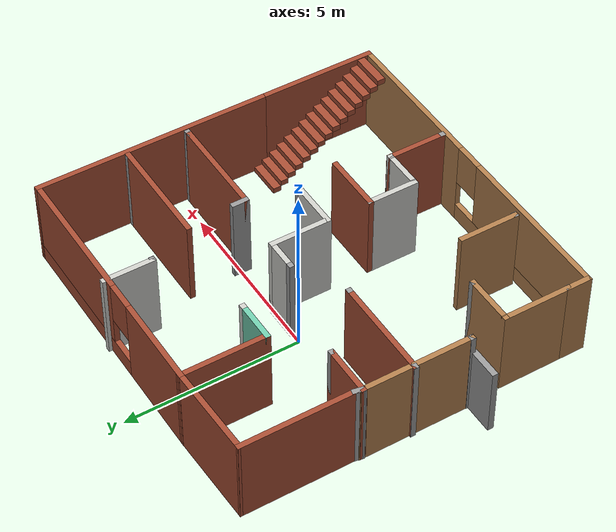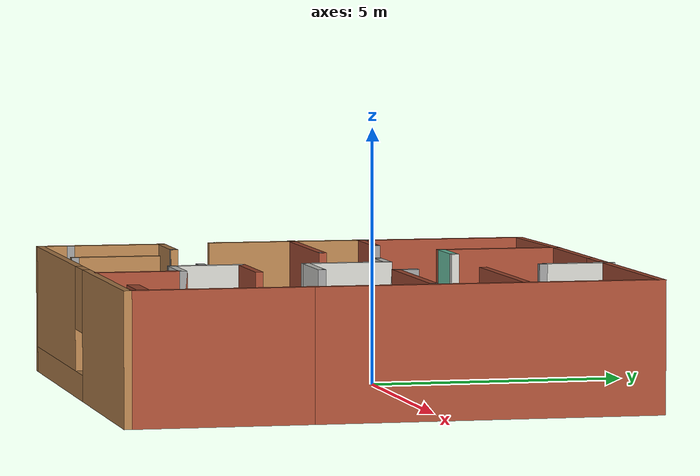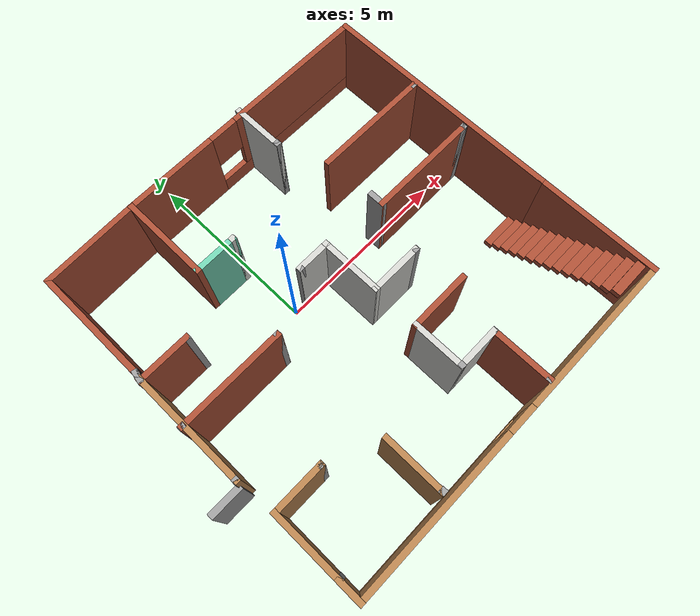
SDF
<?xml version='1.0'?>
<sdf version='1.7'>
  <model name='VENOM_WORLD'>
    <pose>1.03689 -0.885775 0 0 -0 0</pose>
    <link name='Door_0'>
      <collision name='Door_0_Collision'>
        <geometry>
          <box>
            <size>0.9 0.17 2</size>
          </box>
        </geometry>
        <pose>0 0 1 0 -0 0</pose>
      </collision>
      <visual name='Door_0_Visual'>
        <pose>0 0 1 0 -0 0</pose>
        <geometry>
          <box>
            <size>0.9 0.17 2</size>
          </box>
        </geometry>
        <material>
          <script>
            <uri>file://media/materials/scripts/gazebo.material</uri>
            <name>Gazebo/Grey</name>
          </script>
        </material>
      </visual>
      <pose>-5.42568 -1.59288 0 0 -0 0</pose>
    </link>
    <link name='Stairs_0'>
      <visual name='Stairs_0_Visual_0'>
        <pose>4.40502 -1.4564 0.083333 0 -0 0</pose>
        <geometry>
          <box>
            <size>1 0.233333 0.166667</size>
          </box>
        </geometry>
        <material>
          <script>
            <uri>file://media/materials/scripts/gazebo.material</uri>
            <name>Gazebo/Bricks</name>
          </script>
          <ambient>1 1 1 1</ambient>
        </material>
        <meta>
          <layer>0</layer>
        </meta>
      </visual>
      <collision name='Stairs_0_Collision_0'>
        <geometry>
          <box>
            <size>1 0.233333 0.166667</size>
          </box>
        </geometry>
        <pose>4.40502 -1.4564 0.083333 0 -0 0</pose>
      </collision>
      <visual name='Stairs_0_Visual_1'>
        <pose>4.40502 -1.68974 0.25 0 -0 0</pose>
        <geometry>
          <box>
            <size>1 0.233333 0.166667</size>
          </box>
        </geometry>
        <material>
          <script>
            <uri>file://media/materials/scripts/gazebo.material</uri>
            <name>Gazebo/Bricks</name>
          </script>
          <ambient>1 1 1 1</ambient>
        </material>
        <meta>
          <layer>0</layer>
        </meta>
      </visual>
      <collision name='Stairs_0_Collision_1'>
        <geometry>
          <box>
            <size>1 0.233333 0.166667</size>
          </box>
        </geometry>
        <pose>4.40502 -1.68974 0.25 0 -0 0</pose>
      </collision>
      <visual name='Stairs_0_Visual_2'>
        <pose>4.40502 -1.92307 0.416667 0 -0 0</pose>
        <geometry>
          <box>
            <size>1 0.233333 0.166667</size>
          </box>
        </geometry>
        <material>
          <script>
            <uri>file://media/materials/scripts/gazebo.material</uri>
            <name>Gazebo/Bricks</name>
          </script>
          <ambient>1 1 1 1</ambient>
        </material>
        <meta>
          <layer>0</layer>
        </meta>
      </visual>
      <collision name='Stairs_0_Collision_2'>
        <geometry>
          <box>
            <size>1 0.233333 0.166667</size>
          </box>
        </geometry>
        <pose>4.40502 -1.92307 0.416667 0 -0 0</pose>
      </collision>
      <visual name='Stairs_0_Visual_3'>
        <pose>4.40502 -2.1564 0.583333 0 -0 0</pose>
        <geometry>
          <box>
            <size>1 0.233333 0.166667</size>
          </box>
        </geometry>
        <material>
          <script>
            <uri>file://media/materials/scripts/gazebo.material</uri>
            <name>Gazebo/Bricks</name>
          </script>
          <ambient>1 1 1 1</ambient>
        </material>
        <meta>
          <layer>0</layer>
        </meta>
      </visual>
      <collision name='Stairs_0_Collision_3'>
        <geometry>
          <box>
            <size>1 0.233333 0.166667</size>
          </box>
        </geometry>
        <pose>4.40502 -2.1564 0.583333 0 -0 0</pose>
      </collision>
      <visual name='Stairs_0_Visual_4'>
        <pose>4.40502 -2.38974 0.75 0 -0 0</pose>
        <geometry>
          <box>
            <size>1 0.233333 0.166667</size>
          </box>
        </geometry>
        <material>
          <script>
            <uri>file://media/materials/scripts/gazebo.material</uri>
            <name>Gazebo/Bricks</name>
          </script>
          <ambient>1 1 1 1</ambient>
        </material>
        <meta>
          <layer>0</layer>
        </meta>
      </visual>
      <collision name='Stairs_0_Collision_4'>
        <geometry>
          <box>
            <size>1 0.233333 0.166667</size>
          </box>
        </geometry>
        <pose>4.40502 -2.38974 0.75 0 -0 0</pose>
      </collision>
      <visual name='Stairs_0_Visual_5'>
        <pose>4.40502 -2.62307 0.916667 0 -0 0</pose>
        <geometry>
          <box>
            <size>1 0.233333 0.166667</size>
          </box>
        </geometry>
        <material>
          <script>
            <uri>file://media/materials/scripts/gazebo.material</uri>
            <name>Gazebo/Bricks</name>
          </script>
          <ambient>1 1 1 1</ambient>
        </material>
        <meta>
          <layer>0</layer>
        </meta>
      </visual>
      <collision name='Stairs_0_Collision_5'>
        <geometry>
          <box>
            <size>1 0.233333 0.166667</size>
          </box>
        </geometry>
        <pose>4.40502 -2.62307 0.916667 0 -0 0</pose>
      </collision>
      <visual name='Stairs_0_Visual_6'>
        <pose>4.40502 -2.8564 1.08333 0 -0 0</pose>
        <geometry>
          <box>
            <size>1 0.233333 0.166667</size>
          </box>
        </geometry>
        <material>
          <script>
            <uri>file://media/materials/scripts/gazebo.material</uri>
            <name>Gazebo/Bricks</name>
          </script>
          <ambient>1 1 1 1</ambient>
        </material>
        <meta>
          <layer>0</layer>
        </meta>
      </visual>
      <collision name='Stairs_0_Collision_6'>
        <geometry>
          <box>
            <size>1 0.233333 0.166667</size>
          </box>
        </geometry>
        <pose>4.40502 -2.8564 1.08333 0 -0 0</pose>
      </collision>
      <visual name='Stairs_0_Visual_7'>
        <pose>4.40502 -3.08974 1.25 0 -0 0</pose>
        <geometry>
          <box>
            <size>1 0.233333 0.166667</size>
          </box>
        </geometry>
        <material>
          <script>
            <uri>file://media/materials/scripts/gazebo.material</uri>
            <name>Gazebo/Bricks</name>
          </script>
          <ambient>1 1 1 1</ambient>
        </material>
        <meta>
          <layer>0</layer>
        </meta>
      </visual>
      <collision name='Stairs_0_Collision_7'>
        <geometry>
          <box>
            <size>1 0.233333 0.166667</size>
          </box>
        </geometry>
        <pose>4.40502 -3.08974 1.25 0 -0 0</pose>
      </collision>
      <visual name='Stairs_0_Visual_8'>
        <pose>4.40502 -3.32307 1.41667 0 -0 0</pose>
        <geometry>
          <box>
            <size>1 0.233333 0.166667</size>
          </box>
        </geometry>
        <material>
          <script>
            <uri>file://media/materials/scripts/gazebo.material</uri>
            <name>Gazebo/Bricks</name>
          </script>
          <ambient>1 1 1 1</ambient>
        </material>
        <meta>
          <layer>0</layer>
        </meta>
      </visual>
      <collision name='Stairs_0_Collision_8'>
        <geometry>
          <box>
            <size>1 0.233333 0.166667</size>
          </box>
        </geometry>
        <pose>4.40502 -3.32307 1.41667 0 -0 0</pose>
      </collision>
      <visual name='Stairs_0_Visual_9'>
        <pose>4.40502 -3.5564 1.58333 0 -0 0</pose>
        <geometry>
          <box>
            <size>1 0.233333 0.166667</size>
          </box>
        </geometry>
        <material>
          <script>
            <uri>file://media/materials/scripts/gazebo.material</uri>
            <name>Gazebo/Bricks</name>
          </script>
          <ambient>1 1 1 1</ambient>
        </material>
        <meta>
          <layer>0</layer>
        </meta>
      </visual>
      <collision name='Stairs_0_Collision_9'>
        <geometry>
          <box>
            <size>1 0.233333 0.166667</size>
          </box>
        </geometry>
        <pose>4.40502 -3.5564 1.58333 0 -0 0</pose>
      </collision>
      <visual name='Stairs_0_Visual_10'>
        <pose>4.40502 -3.78974 1.75 0 -0 0</pose>
        <geometry>
          <box>
            <size>1 0.233333 0.166667</size>
          </box>
        </geometry>
        <material>
          <script>
            <uri>file://media/materials/scripts/gazebo.material</uri>
            <name>Gazebo/Bricks</name>
          </script>
          <ambient>1 1 1 1</ambient>
        </material>
        <meta>
          <layer>0</layer>
        </meta>
      </visual>
      <collision name='Stairs_0_Collision_10'>
        <geometry>
          <box>
            <size>1 0.233333 0.166667</size>
          </box>
        </geometry>
        <pose>4.40502 -3.78974 1.75 0 -0 0</pose>
      </collision>
      <visual name='Stairs_0_Visual_11'>
        <pose>4.40502 -4.02307 1.91667 0 -0 0</pose>
        <geometry>
          <box>
            <size>1 0.233333 0.166667</size>
          </box>
        </geometry>
        <material>
          <script>
            <uri>file://media/materials/scripts/gazebo.material</uri>
            <name>Gazebo/Bricks</name>
          </script>
          <ambient>1 1 1 1</ambient>
        </material>
        <meta>
          <layer>0</layer>
        </meta>
      </visual>
      <collision name='Stairs_0_Collision_11'>
        <geometry>
          <box>
            <size>1 0.233333 0.166667</size>
          </box>
        </geometry>
        <pose>4.40502 -4.02307 1.91667 0 -0 0</pose>
      </collision>
      <visual name='Stairs_0_Visual_12'>
        <pose>4.40502 -4.2564 2.08333 0 -0 0</pose>
        <geometry>
          <box>
            <size>1 0.233333 0.166667</size>
          </box>
        </geometry>
        <material>
          <script>
            <uri>file://media/materials/scripts/gazebo.material</uri>
            <name>Gazebo/Bricks</name>
          </script>
          <ambient>1 1 1 1</ambient>
        </material>
        <meta>
          <layer>0</layer>
        </meta>
      </visual>
      <collision name='Stairs_0_Collision_12'>
        <geometry>
          <box>
            <size>1 0.233333 0.166667</size>
          </box>
        </geometry>
        <pose>4.40502 -4.2564 2.08333 0 -0 0</pose>
      </collision>
      <visual name='Stairs_0_Visual_13'>
        <pose>4.40502 -4.48974 2.25 0 -0 0</pose>
        <geometry>
          <box>
            <size>1 0.233333 0.166667</size>
          </box>
        </geometry>
        <material>
          <script>
            <uri>file://media/materials/scripts/gazebo.material</uri>
            <name>Gazebo/Bricks</name>
          </script>
          <ambient>1 1 1 1</ambient>
        </material>
        <meta>
          <layer>0</layer>
        </meta>
      </visual>
      <collision name='Stairs_0_Collision_13'>
        <geometry>
          <box>
            <size>1 0.233333 0.166667</size>
          </box>
        </geometry>
        <pose>4.40502 -4.48974 2.25 0 -0 0</pose>
      </collision>
      <visual name='Stairs_0_Visual_14'>
        <pose>4.40502 -4.72307 2.41667 0 -0 0</pose>
        <geometry>
          <box>
            <size>1 0.233333 0.166667</size>
          </box>
        </geometry>
        <material>
          <script>
            <uri>file://media/materials/scripts/gazebo.material</uri>
            <name>Gazebo/Bricks</name>
          </script>
          <ambient>1 1 1 1</ambient>
        </material>
        <meta>
          <layer>0</layer>
        </meta>
      </visual>
      <collision name='Stairs_0_Collision_14'>
        <geometry>
          <box>
            <size>1 0.233333 0.166667</size>
          </box>
        </geometry>
        <pose>4.40502 -4.72307 2.41667 0 -0 0</pose>
      </collision>
    </link>
    <link name='Wall_0'>
      <collision name='Wall_0_Collision'>
        <geometry>
          <box>
            <size>0.16 0.15 2.5</size>
          </box>
        </geometry>
        <pose>0 0 1.25 0 -0 0</pose>
      </collision>
      <visual name='Wall_0_Visual'>
        <pose>0 0 1.25 0 -0 0</pose>
        <geometry>
          <box>
            <size>0.16 0.15 2.5</size>
          </box>
        </geometry>
        <material>
          <script>
            <uri>file://media/materials/scripts/gazebo.material</uri>
            <name>Gazebo/Grey</name>
          </script>
          <ambient>1 1 1 1</ambient>
        </material>
        <meta>
          <layer>0</layer>
        </meta>
      </visual>
      <pose>-4.95189 -1.52422 0 0 -0 0</pose>
    </link>
    <link name='Wall_1'>
      <collision name='Wall_1_Collision'>
        <geometry>
          <box>
            <size>3.25 0.15 2.5</size>
          </box>
        </geometry>
        <pose>0 0 1.25 0 -0 0</pose>
      </collision>
      <visual name='Wall_1_Visual'>
        <pose>0 0 1.25 0 -0 0</pose>
        <geometry>
          <box>
            <size>3.25 0.15 2.5</size>
          </box>
        </geometry>
        <material>
          <script>
            <uri>file://media/materials/scripts/gazebo.material</uri>
            <name>Gazebo/Wood</name>
          </script>
          <ambient>1 1 1 1</ambient>
        </material>
        <meta>
          <layer>0</layer>
        </meta>
      </visual>
      <pose>-4.94689 0.025775 0 0 -0 1.5708</pose>
    </link>
    <link name='Wall_11'>
      <collision name='Wall_11_Collision'>
        <geometry>
          <box>
            <size>0.16 0.15 2.5</size>
          </box>
        </geometry>
        <pose>0 0 1.25 0 -0 0</pose>
      </collision>
      <visual name='Wall_11_Visual'>
        <pose>0 0 1.25 0 -0 0</pose>
        <geometry>
          <box>
            <size>0.16 0.15 2.5</size>
          </box>
        </geometry>
        <material>
          <script>
            <uri>file://media/materials/scripts/gazebo.material</uri>
            <name>Gazebo/Grey</name>
          </script>
          <ambient>1 1 1 1</ambient>
        </material>
        <meta>
          <layer>0</layer>
        </meta>
      </visual>
      <pose>4.87305 2.39461 0 0 -0 0</pose>
    </link>
    <link name='Wall_12'>
      <collision name='Wall_12_Collision'>
        <geometry>
          <box>
            <size>3.25 0.15 2.5</size>
          </box>
        </geometry>
        <pose>0 0 1.25 0 -0 0</pose>
      </collision>
      <visual name='Wall_12_Visual'>
        <pose>0 0 1.25 0 -0 0</pose>
        <geometry>
          <box>
            <size>3.25 0.15 2.5</size>
          </box>
        </geometry>
        <material>
          <script>
            <uri>file://media/materials/scripts/gazebo.material</uri>
            <name>Gazebo/Bricks</name>
          </script>
          <ambient>1 1 1 1</ambient>
        </material>
        <meta>
          <layer>0</layer>
        </meta>
      </visual>
      <pose>3.32805 2.39461 0 0 -0 3.14159</pose>
    </link>
    <link name='Wall_14'>
      <collision name='Wall_14_Collision'>
        <geometry>
          <box>
            <size>1.75 0.15 2.5</size>
          </box>
        </geometry>
        <pose>0 0 1.25 0 -0 0</pose>
      </collision>
      <visual name='Wall_14_Visual'>
        <pose>0 0 1.25 0 -0 0</pose>
        <geometry>
          <box>
            <size>1.75 0.15 2.5</size>
          </box>
        </geometry>
        <material>
          <script>
            <uri>file://media/materials/scripts/gazebo.material</uri>
            <name>Gazebo/Bricks</name>
          </script>
          <ambient>1 1 1 1</ambient>
        </material>
        <meta>
          <layer>0</layer>
        </meta>
      </visual>
      <pose>0.97805 -1.95539 0 0 -0 3.14159</pose>
    </link>
    <link name='Wall_15'>
      <collision name='Wall_15_Collision'>
        <geometry>
          <box>
            <size>1.5 0.15 2.5</size>
          </box>
        </geometry>
        <pose>0 0 1.25 0 -0 0</pose>
      </collision>
      <visual name='Wall_15_Visual'>
        <pose>0 0 1.25 0 -0 0</pose>
        <geometry>
          <box>
            <size>1.5 0.15 2.5</size>
          </box>
        </geometry>
        <material>
          <script>
            <uri>file://media/materials/scripts/gazebo.material</uri>
            <name>Gazebo/CeilingTiled</name>
          </script>
          <ambient>0.435294 0.796078 0.67451 1</ambient>
        </material>
        <meta>
          <layer>0</layer>
        </meta>
      </visual>
      <pose>0.17805 -2.63039 0 0 -0 -1.5708</pose>
    </link>
    <link name='Wall_16'>
      <collision name='Wall_16_Collision'>
        <geometry>
          <box>
            <size>0.16 0.15 2.5</size>
          </box>
        </geometry>
        <pose>0 0 1.25 0 -0 0</pose>
      </collision>
      <visual name='Wall_16_Visual'>
        <pose>0 0 1.25 0 -0 0</pose>
        <geometry>
          <box>
            <size>0.16 0.15 2.5</size>
          </box>
        </geometry>
        <material>
          <script>
            <uri>file://media/materials/scripts/gazebo.material</uri>
            <name>Gazebo/Grey</name>
          </script>
          <ambient>1 1 1 1</ambient>
        </material>
        <meta>
          <layer>0</layer>
        </meta>
      </visual>
      <pose>0.18305 -3.30539 0 0 -0 0</pose>
    </link>
    <link name='Wall_4'>
      <pose>1.32811 4.92577 0 0 -0 0</pose>
      <visual name='Wall_4_Visual_0'>
        <pose>-2.43796 0 1.25 0 -0 0</pose>
        <geometry>
          <box>
            <size>2.62409 0.15 2.5</size>
          </box>
        </geometry>
        <material>
          <script>
            <uri>file://media/materials/scripts/gazebo.material</uri>
            <name>Gazebo/Bricks</name>
          </script>
          <ambient>1 1 1 1</ambient>
        </material>
        <meta>
          <layer>0</layer>
        </meta>
      </visual>
      <collision name='Wall_4_Collision_0'>
        <geometry>
          <box>
            <size>2.62409 0.15 2.5</size>
          </box>
        </geometry>
        <pose>-2.43796 0 1.25 0 -0 0</pose>
      </collision>
      <visual name='Wall_4_Visual_1'>
        <pose>1.31204 0 0.25 0 -0 0</pose>
        <geometry>
          <box>
            <size>4.87591 0.15 0.5</size>
          </box>
        </geometry>
        <material>
          <script>
            <uri>file://media/materials/scripts/gazebo.material</uri>
            <name>Gazebo/Bricks</name>
          </script>
          <ambient>1 1 1 1</ambient>
        </material>
        <meta>
          <layer>0</layer>
        </meta>
      </visual>
      <collision name='Wall_4_Collision_1'>
        <geometry>
          <box>
            <size>4.87591 0.15 0.5</size>
          </box>
        </geometry>
        <pose>1.31204 0 0.25 0 -0 0</pose>
      </collision>
      <visual name='Wall_4_Visual_2'>
        <pose>1.71204 0 1.5 0 -0 0</pose>
        <geometry>
          <box>
            <size>4.07591 0.15 2</size>
          </box>
        </geometry>
        <material>
          <script>
            <uri>file://media/materials/scripts/gazebo.material</uri>
            <name>Gazebo/Bricks</name>
          </script>
          <ambient>1 1 1 1</ambient>
        </material>
        <meta>
          <layer>0</layer>
        </meta>
      </visual>
      <collision name='Wall_4_Collision_2'>
        <geometry>
          <box>
            <size>4.07591 0.15 2</size>
          </box>
        </geometry>
        <pose>1.71204 0 1.5 0 -0 0</pose>
      </collision>
      <visual name='Wall_4_Visual_3'>
        <pose>-0.725911 0 1.9 0 -0 0</pose>
        <geometry>
          <box>
            <size>0.8 0.15 1.2</size>
          </box>
        </geometry>
        <material>
          <script>
            <uri>file://media/materials/scripts/gazebo.material</uri>
            <name>Gazebo/Bricks</name>
          </script>
          <ambient>1 1 1 1</ambient>
        </material>
        <meta>
          <layer>0</layer>
        </meta>
      </visual>
      <collision name='Wall_4_Collision_3'>
        <geometry>
          <box>
            <size>0.8 0.15 1.2</size>
          </box>
        </geometry>
        <pose>-0.725911 0 1.9 0 -0 0</pose>
      </collision>
    </link>
    <link name='Wall_47'>
      <collision name='Wall_47_Collision'>
        <geometry>
          <box>
            <size>0.325021 0.15 2.5</size>
          </box>
        </geometry>
        <pose>0 0 1.25 0 -0 0</pose>
      </collision>
      <visual name='Wall_47_Visual'>
        <pose>0 0 1.25 0 -0 0</pose>
        <geometry>
          <box>
            <size>0.325021 0.15 2.5</size>
          </box>
        </geometry>
        <material>
          <script>
            <uri>file://media/materials/scripts/gazebo.material</uri>
            <name>Gazebo/Grey</name>
          </script>
          <ambient>1 1 1 1</ambient>
        </material>
        <meta>
          <layer>0</layer>
        </meta>
      </visual>
      <pose>-4.92955 1.66155 0 0 -0 1.37127</pose>
    </link>
    <link name='Wall_48'>
      <collision name='Wall_48_Collision'>
        <geometry>
          <box>
            <size>3.25 0.15 2.5</size>
          </box>
        </geometry>
        <pose>0 0 1.25 0 -0 0</pose>
      </collision>
      <visual name='Wall_48_Visual'>
        <pose>0 0 1.25 0 -0 0</pose>
        <geometry>
          <box>
            <size>3.25 0.15 2.5</size>
          </box>
        </geometry>
        <material>
          <script>
            <uri>file://media/materials/scripts/gazebo.material</uri>
            <name>Gazebo/Bricks</name>
          </script>
          <ambient>1 1 1 1</ambient>
        </material>
        <meta>
          <layer>0</layer>
        </meta>
      </visual>
      <pose>-4.9122 3.29732 0 0 -0 1.5708</pose>
    </link>
    <link name='Wall_49'>
      <collision name='Wall_49_Collision'>
        <geometry>
          <box>
            <size>2.71651 0.15 2.5</size>
          </box>
        </geometry>
        <pose>0 0 1.25 0 -0 0</pose>
      </collision>
      <visual name='Wall_49_Visual'>
        <pose>0 0 1.25 0 -0 0</pose>
        <geometry>
          <box>
            <size>2.71651 0.15 2.5</size>
          </box>
        </geometry>
        <material>
          <script>
            <uri>file://media/materials/scripts/gazebo.material</uri>
            <name>Gazebo/Bricks</name>
          </script>
          <ambient>1 1 1 1</ambient>
        </material>
        <meta>
          <layer>0</layer>
        </meta>
      </visual>
      <pose>-3.62954 4.88655 0 0 -0 0.030572</pose>
    </link>
    <link name='Wall_5'>
      <collision name='Wall_5_Collision'>
        <geometry>
          <box>
            <size>6.75 0.15 2.5</size>
          </box>
        </geometry>
        <pose>0 0 1.25 0 -0 0</pose>
      </collision>
      <visual name='Wall_5_Visual'>
        <pose>0 0 1.25 0 -0 0</pose>
        <geometry>
          <box>
            <size>6.75 0.15 2.5</size>
          </box>
        </geometry>
        <material>
          <script>
            <uri>file://media/materials/scripts/gazebo.material</uri>
            <name>Gazebo/Bricks</name>
          </script>
          <ambient>1 1 1 1</ambient>
        </material>
        <meta>
          <layer>0</layer>
        </meta>
      </visual>
      <pose>5.00311 1.62577 0 0 -0 -1.5708</pose>
    </link>
    <link name='Wall_50'>
      <collision name='Wall_50_Collision'>
        <geometry>
          <box>
            <size>2.5 0.15 2.5</size>
          </box>
        </geometry>
        <pose>0 0 1.25 0 -0 0</pose>
      </collision>
      <visual name='Wall_50_Visual'>
        <pose>0 0 1.25 0 -0 0</pose>
        <geometry>
          <box>
            <size>2.5 0.15 2.5</size>
          </box>
        </geometry>
        <material>
          <script>
            <uri>file://media/materials/scripts/gazebo.material</uri>
            <name>Gazebo/Bricks</name>
          </script>
          <ambient>1 1 1 1</ambient>
        </material>
        <meta>
          <layer>0</layer>
        </meta>
      </visual>
      <pose>-2.34689 3.75077 0 0 -0 -1.5708</pose>
    </link>
    <link name='Wall_51'>
      <collision name='Wall_51_Collision'>
        <geometry>
          <box>
            <size>1.25 0.15 2.5</size>
          </box>
        </geometry>
        <pose>0 0 1.25 0 -0 0</pose>
      </collision>
      <visual name='Wall_51_Visual'>
        <pose>0 0 1.25 0 -0 0</pose>
        <geometry>
          <box>
            <size>1.25 0.15 2.5</size>
          </box>
        </geometry>
        <material>
          <script>
            <uri>file://media/materials/scripts/gazebo.material</uri>
            <name>Gazebo/Grey</name>
          </script>
          <ambient>0.435294 0.796078 0.67451 1</ambient>
        </material>
        <meta>
          <layer>0</layer>
        </meta>
      </visual>
      <pose>-1.79689 2.57578 0 0 -0 0</pose>
    </link>
    <link name='Wall_52'>
      <collision name='Wall_52_Collision'>
        <geometry>
          <box>
            <size>0.16 0.15 2.5</size>
          </box>
        </geometry>
        <pose>0 0 1.25 0 -0 0</pose>
      </collision>
      <visual name='Wall_52_Visual'>
        <pose>0 0 1.25 0 -0 0</pose>
        <geometry>
          <box>
            <size>0.16 0.15 2.5</size>
          </box>
        </geometry>
        <material>
          <script>
            <uri>file://media/materials/scripts/gazebo.material</uri>
            <name>Gazebo/CeilingTiled</name>
          </script>
          <ambient>1 1 1 1</ambient>
        </material>
        <meta>
          <layer>0</layer>
        </meta>
      </visual>
      <pose>-1.24189 2.57578 0 0 -0 0</pose>
    </link>
    <link name='Wall_54'>
      <collision name='Wall_54_Collision'>
        <geometry>
          <box>
            <size>0.356284 0.15 2.5</size>
          </box>
        </geometry>
        <pose>0 0 1.25 0 -0 0</pose>
      </collision>
      <visual name='Wall_54_Visual'>
        <pose>0 0 1.25 0 -0 0</pose>
        <geometry>
          <box>
            <size>0.356284 0.15 2.5</size>
          </box>
        </geometry>
        <material>
          <script>
            <uri>file://media/materials/scripts/gazebo.material</uri>
            <name>Gazebo/Grey</name>
          </script>
          <ambient>1 1 1 1</ambient>
        </material>
        <meta>
          <layer>0</layer>
        </meta>
      </visual>
      <pose>-4.93243 1.64619 0 0 -0 -1.76819</pose>
    </link>
    <link name='Wall_55'>
      <collision name='Wall_55_Collision'>
        <geometry>
          <box>
            <size>1.5 0.15 2.5</size>
          </box>
        </geometry>
        <pose>0 0 1.25 0 -0 0</pose>
      </collision>
      <visual name='Wall_55_Visual'>
        <pose>0 0 1.25 0 -0 0</pose>
        <geometry>
          <box>
            <size>1.5 0.15 2.5</size>
          </box>
        </geometry>
        <material>
          <script>
            <uri>file://media/materials/scripts/gazebo.material</uri>
            <name>Gazebo/Bricks</name>
          </script>
          <ambient>1 1 1 1</ambient>
        </material>
        <meta>
          <layer>0</layer>
        </meta>
      </visual>
      <pose>-4.27766 1.54505 0 0 -0 0</pose>
    </link>
    <link name='Wall_56'>
      <collision name='Wall_56_Collision'>
        <geometry>
          <box>
            <size>0.15 0.15 2.5</size>
          </box>
        </geometry>
        <pose>0 0 1.25 0 -0 0</pose>
      </collision>
      <visual name='Wall_56_Visual'>
        <pose>0 0 1.25 0 -0 0</pose>
        <geometry>
          <box>
            <size>0.15 0.15 2.5</size>
          </box>
        </geometry>
        <material>
          <script>
            <uri>file://media/materials/scripts/gazebo.material</uri>
            <name>Gazebo/Grey</name>
          </script>
          <ambient>1 1 1 1</ambient>
        </material>
        <meta>
          <layer>0</layer>
        </meta>
      </visual>
      <pose>-3.60265 1.54505 0 0 -0 0</pose>
    </link>
    <link name='Wall_58'>
      <collision name='Wall_58_Collision'>
        <geometry>
          <box>
            <size>0.16 0.15 2.5</size>
          </box>
        </geometry>
        <pose>0 0 1.25 0 -0 0</pose>
      </collision>
      <visual name='Wall_58_Visual'>
        <pose>0 0 1.25 0 -0 0</pose>
        <geometry>
          <box>
            <size>0.16 0.15 2.5</size>
          </box>
        </geometry>
        <material>
          <script>
            <uri>file://media/materials/scripts/gazebo.material</uri>
            <name>Gazebo/Grey</name>
          </script>
          <ambient>1 1 1 1</ambient>
        </material>
        <meta>
          <layer>0</layer>
        </meta>
      </visual>
      <pose>-4.99811 0.1291 0 0 -0 0</pose>
    </link>
    <link name='Wall_59'>
      <collision name='Wall_59_Collision'>
        <geometry>
          <box>
            <size>3 0.15 2.5</size>
          </box>
        </geometry>
        <pose>0 0 1.25 0 -0 0</pose>
      </collision>
      <visual name='Wall_59_Visual'>
        <pose>0 0 1.25 0 -0 0</pose>
        <geometry>
          <box>
            <size>3 0.15 2.5</size>
          </box>
        </geometry>
        <material>
          <script>
            <uri>file://media/materials/scripts/gazebo.material</uri>
            <name>Gazebo/Bricks</name>
          </script>
          <ambient>1 1 1 1</ambient>
        </material>
        <meta>
          <layer>0</layer>
        </meta>
      </visual>
      <pose>-3.56811 0.1291 0 0 -0 0</pose>
    </link>
    <link name='Wall_6'>
      <collision name='Wall_6_Collision'>
        <geometry>
          <box>
            <size>3.5 0.15 2.5</size>
          </box>
        </geometry>
        <pose>0 0 1.25 0 -0 0</pose>
      </collision>
      <visual name='Wall_6_Visual'>
        <pose>0 0 1.25 0 -0 0</pose>
        <geometry>
          <box>
            <size>3.5 0.15 2.5</size>
          </box>
        </geometry>
        <material>
          <script>
            <uri>file://media/materials/scripts/gazebo.material</uri>
            <name>Gazebo/Bricks</name>
          </script>
          <ambient>1 1 1 1</ambient>
        </material>
        <meta>
          <layer>0</layer>
        </meta>
      </visual>
      <pose>5.00311 -3.34923 0 0 -0 -1.5708</pose>
    </link>
    <link name='Wall_60'>
      <collision name='Wall_60_Collision'>
        <geometry>
          <box>
            <size>0.15 0.15 2.5</size>
          </box>
        </geometry>
        <pose>0 0 1.25 0 -0 0</pose>
      </collision>
      <visual name='Wall_60_Visual'>
        <pose>0 0 1.25 0 -0 0</pose>
        <geometry>
          <box>
            <size>0.15 0.15 2.5</size>
          </box>
        </geometry>
        <material>
          <script>
            <uri>file://media/materials/scripts/gazebo.material</uri>
            <name>Gazebo/Grey</name>
          </script>
          <ambient>1 1 1 1</ambient>
        </material>
        <meta>
          <layer>0</layer>
        </meta>
      </visual>
      <pose>-2.14311 0.1291 0 0 -0 0</pose>
    </link>
    <link name='Wall_62'>
      <collision name='Wall_62_Collision'>
        <geometry>
          <box>
            <size>0.5 0.15 2.5</size>
          </box>
        </geometry>
        <pose>0 0 1.25 0 -0 0</pose>
      </collision>
      <visual name='Wall_62_Visual'>
        <pose>0 0 1.25 0 -0 0</pose>
        <geometry>
          <box>
            <size>0.5 0.15 2.5</size>
          </box>
        </geometry>
        <material>
          <script>
            <uri>file://media/materials/scripts/gazebo.material</uri>
            <name>Gazebo/Grey</name>
          </script>
          <ambient>1 1 1 1</ambient>
        </material>
        <meta>
          <layer>0</layer>
        </meta>
      </visual>
      <pose>1.87434 0.844123 0 0 -0 -1.5708</pose>
    </link>
    <link name='Wall_63'>
      <collision name='Wall_63_Collision'>
        <geometry>
          <box>
            <size>3 0.15 2.5</size>
          </box>
        </geometry>
        <pose>0 0 1.25 0 -0 0</pose>
      </collision>
      <visual name='Wall_63_Visual'>
        <pose>0 0 1.25 0 -0 0</pose>
        <geometry>
          <box>
            <size>3 0.15 2.5</size>
          </box>
        </geometry>
        <material>
          <script>
            <uri>file://media/materials/scripts/gazebo.material</uri>
            <name>Gazebo/Bricks</name>
          </script>
          <ambient>1 1 1 1</ambient>
        </material>
        <meta>
          <layer>0</layer>
        </meta>
      </visual>
      <pose>3.29934 0.669123 0 0 -0 0</pose>
    </link>
    <link name='Wall_64'>
      <collision name='Wall_64_Collision'>
        <geometry>
          <box>
            <size>0.25 0.15 2.5</size>
          </box>
        </geometry>
        <pose>0 0 1.25 0 -0 0</pose>
      </collision>
      <visual name='Wall_64_Visual'>
        <pose>0 0 1.25 0 -0 0</pose>
        <geometry>
          <box>
            <size>0.25 0.15 2.5</size>
          </box>
        </geometry>
        <material>
          <script>
            <uri>file://media/materials/scripts/gazebo.material</uri>
            <name>Gazebo/Grey</name>
          </script>
          <ambient>1 1 1 1</ambient>
        </material>
        <meta>
          <layer>0</layer>
        </meta>
      </visual>
      <pose>4.77434 0.669123 0 0 -0 0</pose>
    </link>
    <link name='Wall_65'>
      <collision name='Wall_65_Collision'>
        <geometry>
          <box>
            <size>0.16 0.15 2.5</size>
          </box>
        </geometry>
        <pose>0 0 1.25 0 -0 0</pose>
      </collision>
      <visual name='Wall_65_Visual'>
        <pose>0 0 1.25 0 -0 0</pose>
        <geometry>
          <box>
            <size>0.16 0.15 2.5</size>
          </box>
        </geometry>
        <material>
          <script>
            <uri>file://media/materials/scripts/gazebo.material</uri>
            <name>Gazebo/Grey</name>
          </script>
          <ambient>1 1 1 1</ambient>
        </material>
        <meta>
          <layer>0</layer>
        </meta>
      </visual>
      <pose>4.82934 0.669123 0 0 -0 0</pose>
    </link>
    <link name='Wall_67'>
      <collision name='Wall_67_Collision'>
        <geometry>
          <box>
            <size>1.25 0.15 2.5</size>
          </box>
        </geometry>
        <pose>0 0 1.25 0 -0 0</pose>
      </collision>
      <visual name='Wall_67_Visual'>
        <pose>0 0 1.25 0 -0 0</pose>
        <geometry>
          <box>
            <size>1.25 0.15 2.5</size>
          </box>
        </geometry>
        <material>
          <script>
            <uri>file://media/materials/scripts/gazebo.material</uri>
            <name>Gazebo/CeilingTiled</name>
          </script>
          <ambient>0.435294 0.796078 0.67451 1</ambient>
        </material>
        <meta>
          <layer>0</layer>
        </meta>
      </visual>
      <pose>0.72805 -3.30539 0 0 -0 0</pose>
    </link>
    <link name='Wall_68'>
      <collision name='Wall_68_Collision'>
        <geometry>
          <box>
            <size>0.16 0.15 2.5</size>
          </box>
        </geometry>
        <pose>0 0 1.25 0 -0 0</pose>
      </collision>
      <visual name='Wall_68_Visual'>
        <pose>0 0 1.25 0 -0 0</pose>
        <geometry>
          <box>
            <size>0.16 0.15 2.5</size>
          </box>
        </geometry>
        <material>
          <script>
            <uri>file://media/materials/scripts/gazebo.material</uri>
            <name>Gazebo/Grey</name>
          </script>
          <ambient>1 1 1 1</ambient>
        </material>
        <meta>
          <layer>0</layer>
        </meta>
      </visual>
      <pose>1.28305 -3.30539 0 0 -0 0</pose>
    </link>
    <link name='Wall_69'>
      <collision name='Wall_69_Collision'>
        <geometry>
          <box>
            <size>1.75 0.15 2.5</size>
          </box>
        </geometry>
        <pose>0 0 1.25 0 -0 0</pose>
      </collision>
      <visual name='Wall_69_Visual'>
        <pose>0 0 1.25 0 -0 0</pose>
        <geometry>
          <box>
            <size>1.75 0.15 2.5</size>
          </box>
        </geometry>
        <material>
          <script>
            <uri>file://media/materials/scripts/gazebo.material</uri>
            <name>Gazebo/Bricks</name>
          </script>
          <ambient>1 1 1 1</ambient>
        </material>
        <meta>
          <layer>0</layer>
        </meta>
      </visual>
      <pose>1.28805 -4.10539 0 0 -0 -1.5708</pose>
    </link>
    <link name='Wall_7'>
      <pose>0.07811 -5.02423 0 0 -0 3.14159</pose>
      <visual name='Wall_7_Visual_0'>
        <pose>-2.75977 0 1.25 0 -0 0</pose>
        <geometry>
          <box>
            <size>4.48047 0.15 2.5</size>
          </box>
        </geometry>
        <material>
          <script>
            <uri>file://media/materials/scripts/gazebo.material</uri>
            <name>Gazebo/Wood</name>
          </script>
          <ambient>1 1 1 1</ambient>
        </material>
        <meta>
          <layer>0</layer>
        </meta>
      </visual>
      <collision name='Wall_7_Collision_0'>
        <geometry>
          <box>
            <size>4.48047 0.15 2.5</size>
          </box>
        </geometry>
        <pose>-2.75977 0 1.25 0 -0 0</pose>
      </collision>
      <visual name='Wall_7_Visual_1'>
        <pose>2.24023 0 0.25 0 -0 0</pose>
        <geometry>
          <box>
            <size>5.51953 0.15 0.5</size>
          </box>
        </geometry>
        <material>
          <script>
            <uri>file://media/materials/scripts/gazebo.material</uri>
            <name>Gazebo/Wood</name>
          </script>
          <ambient>1 1 1 1</ambient>
        </material>
        <meta>
          <layer>0</layer>
        </meta>
      </visual>
      <collision name='Wall_7_Collision_1'>
        <geometry>
          <box>
            <size>5.51953 0.15 0.5</size>
          </box>
        </geometry>
        <pose>2.24023 0 0.25 0 -0 0</pose>
      </collision>
      <visual name='Wall_7_Visual_2'>
        <pose>2.64023 0 1.5 0 -0 0</pose>
        <geometry>
          <box>
            <size>4.71953 0.15 2</size>
          </box>
        </geometry>
        <material>
          <script>
            <uri>file://media/materials/scripts/gazebo.material</uri>
            <name>Gazebo/Wood</name>
          </script>
          <ambient>1 1 1 1</ambient>
        </material>
        <meta>
          <layer>0</layer>
        </meta>
      </visual>
      <collision name='Wall_7_Collision_2'>
        <geometry>
          <box>
            <size>4.71953 0.15 2</size>
          </box>
        </geometry>
        <pose>2.64023 0 1.5 0 -0 0</pose>
      </collision>
      <visual name='Wall_7_Visual_3'>
        <pose>-0.119533 0 1.9 0 -0 0</pose>
        <geometry>
          <box>
            <size>0.8 0.15 1.2</size>
          </box>
        </geometry>
        <material>
          <script>
            <uri>file://media/materials/scripts/gazebo.material</uri>
            <name>Gazebo/Wood</name>
          </script>
          <ambient>1 1 1 1</ambient>
        </material>
        <meta>
          <layer>0</layer>
        </meta>
      </visual>
      <collision name='Wall_7_Collision_3'>
        <geometry>
          <box>
            <size>0.8 0.15 1.2</size>
          </box>
        </geometry>
        <pose>-0.119533 0 1.9 0 -0 0</pose>
      </collision>
    </link>
    <link name='Wall_70'>
      <collision name='Wall_70_Collision'>
        <geometry>
          <box>
            <size>0.15 0.15 2.5</size>
          </box>
        </geometry>
        <pose>0 0 1.25 0 -0 0</pose>
      </collision>
      <visual name='Wall_70_Visual'>
        <pose>0 0 1.25 0 -0 0</pose>
        <geometry>
          <box>
            <size>0.15 0.15 2.5</size>
          </box>
        </geometry>
        <material>
          <script>
            <uri>file://media/materials/scripts/gazebo.material</uri>
            <name>Gazebo/Grey</name>
          </script>
          <ambient>1 1 1 1</ambient>
        </material>
        <meta>
          <layer>0</layer>
        </meta>
      </visual>
      <pose>1.28805 -4.90539 0 0 -0 0</pose>
    </link>
    <link name='Wall_72'>
      <collision name='Wall_72_Collision'>
        <geometry>
          <box>
            <size>1.75 0.15 2.5</size>
          </box>
        </geometry>
        <pose>0 0 1.25 0 -0 0</pose>
      </collision>
      <visual name='Wall_72_Visual'>
        <pose>0 0 1.25 0 -0 0</pose>
        <geometry>
          <box>
            <size>1.75 0.15 2.5</size>
          </box>
        </geometry>
        <material>
          <script>
            <uri>file://media/materials/scripts/gazebo.material</uri>
            <name>Gazebo/Wood</name>
          </script>
          <ambient>1 1 1 1</ambient>
        </material>
        <meta>
          <layer>0</layer>
        </meta>
      </visual>
      <pose>-2.13076 -3.98826 0 0 -0 -1.5708</pose>
    </link>
    <link name='Wall_73'>
      <collision name='Wall_73_Collision'>
        <geometry>
          <box>
            <size>0.16 0.15 2.5</size>
          </box>
        </geometry>
        <pose>0 0 1.25 0 -0 0</pose>
      </collision>
      <visual name='Wall_73_Visual'>
        <pose>0 0 1.25 0 -0 0</pose>
        <geometry>
          <box>
            <size>0.16 0.15 2.5</size>
          </box>
        </geometry>
        <material>
          <script>
            <uri>file://media/materials/scripts/gazebo.material</uri>
            <name>Gazebo/Grey</name>
          </script>
          <ambient>1 1 1 1</ambient>
        </material>
        <meta>
          <layer>0</layer>
        </meta>
      </visual>
      <pose>-2.12576 -4.78826 0 0 -0 0</pose>
    </link>
    <link name='Wall_74'>
      <collision name='Wall_74_Collision'>
        <geometry>
          <box>
            <size>0.16 0.15 2.5</size>
          </box>
        </geometry>
        <pose>0 0 1.25 0 -0 0</pose>
      </collision>
      <visual name='Wall_74_Visual'>
        <pose>0 0 1.25 0 -0 0</pose>
        <geometry>
          <box>
            <size>0.16 0.15 2.5</size>
          </box>
        </geometry>
        <material>
          <script>
            <uri>file://media/materials/scripts/gazebo.material</uri>
            <name>Gazebo/Grey</name>
          </script>
          <ambient>1 1 1 1</ambient>
        </material>
        <meta>
          <layer>0</layer>
        </meta>
      </visual>
      <pose>-2.11577 -4.78826 0 0 -0 0</pose>
    </link>
    <link name='Wall_76'>
      <collision name='Wall_76_Collision'>
        <geometry>
          <box>
            <size>1.5 0.15 2.5</size>
          </box>
        </geometry>
        <pose>0 0 1.25 0 -0 0</pose>
      </collision>
      <visual name='Wall_76_Visual'>
        <pose>0 0 1.25 0 -0 0</pose>
        <geometry>
          <box>
            <size>1.5 0.15 2.5</size>
          </box>
        </geometry>
        <material>
          <script>
            <uri>file://media/materials/scripts/gazebo.material</uri>
            <name>Gazebo/CeilingTiled</name>
          </script>
          <ambient>0.435294 0.796078 0.67451 1</ambient>
        </material>
        <meta>
          <layer>0</layer>
        </meta>
      </visual>
      <pose>1.2675 4.34922 0 0 -0 -1.5708</pose>
    </link>
    <link name='Wall_77'>
      <collision name='Wall_77_Collision'>
        <geometry>
          <box>
            <size>0.16 0.15 2.5</size>
          </box>
        </geometry>
        <pose>0 0 1.25 0 -0 0</pose>
      </collision>
      <visual name='Wall_77_Visual'>
        <pose>0 0 1.25 0 -0 0</pose>
        <geometry>
          <box>
            <size>0.16 0.15 2.5</size>
          </box>
        </geometry>
        <material>
          <script>
            <uri>file://media/materials/scripts/gazebo.material</uri>
            <name>Gazebo/Grey</name>
          </script>
          <ambient>1 1 1 1</ambient>
        </material>
        <meta>
          <layer>0</layer>
        </meta>
      </visual>
      <pose>1.2725 3.67422 0 0 -0 0</pose>
    </link>
    <link name='Wall_78'>
      <collision name='Wall_78_Collision'>
        <geometry>
          <box>
            <size>0.16 0.15 2.5</size>
          </box>
        </geometry>
        <pose>0 0 1.25 0 -0 0</pose>
      </collision>
      <visual name='Wall_78_Visual'>
        <pose>0 0 1.25 0 -0 0</pose>
        <geometry>
          <box>
            <size>0.16 0.15 2.5</size>
          </box>
        </geometry>
        <material>
          <script>
            <uri>file://media/materials/scripts/gazebo.material</uri>
            <name>Gazebo/Grey</name>
          </script>
          <ambient>1 1 1 1</ambient>
        </material>
        <meta>
          <layer>0</layer>
        </meta>
      </visual>
      <pose>1.2825 3.67422 0 0 -0 0</pose>
    </link>
    <link name='Wall_8'>
      <collision name='Wall_8_Collision'>
        <geometry>
          <box>
            <size>0.75 0.15 2.5</size>
          </box>
        </geometry>
        <pose>0 0 1.25 0 -0 0</pose>
      </collision>
      <visual name='Wall_8_Visual'>
        <pose>0 0 1.25 0 -0 0</pose>
        <geometry>
          <box>
            <size>0.75 0.15 2.5</size>
          </box>
        </geometry>
        <material>
          <script>
            <uri>file://media/materials/scripts/gazebo.material</uri>
            <name>Gazebo/Wood</name>
          </script>
          <ambient>1 1 1 1</ambient>
        </material>
        <meta>
          <layer>0</layer>
        </meta>
      </visual>
      <pose>-4.84689 -4.72422 0 0 -0 1.5708</pose>
    </link>
    <link name='Wall_80'>
      <collision name='Wall_80_Collision'>
        <geometry>
          <box>
            <size>2 0.15 2.5</size>
          </box>
        </geometry>
        <pose>0 0 1.25 0 -0 0</pose>
      </collision>
      <visual name='Wall_80_Visual'>
        <pose>0 0 1.25 0 -0 0</pose>
        <geometry>
          <box>
            <size>2 0.15 2.5</size>
          </box>
        </geometry>
        <material>
          <script>
            <uri>file://media/materials/scripts/gazebo.material</uri>
            <name>Gazebo/Wood</name>
          </script>
          <ambient>1 1 1 1</ambient>
        </material>
        <meta>
          <layer>0</layer>
        </meta>
      </visual>
      <pose>-4.84689 -3.49923 0 0 -0 1.5708</pose>
    </link>
    <link name='Wall_81'>
      <collision name='Wall_81_Collision'>
        <geometry>
          <box>
            <size>1.5 0.15 2.5</size>
          </box>
        </geometry>
        <pose>0 0 1.25 0 -0 0</pose>
      </collision>
      <visual name='Wall_81_Visual'>
        <pose>0 0 1.25 0 -0 0</pose>
        <geometry>
          <box>
            <size>1.5 0.15 2.5</size>
          </box>
        </geometry>
        <material>
          <script>
            <uri>file://media/materials/scripts/gazebo.material</uri>
            <name>Gazebo/Wood</name>
          </script>
          <ambient>1 1 1 1</ambient>
        </material>
        <meta>
          <layer>0</layer>
        </meta>
      </visual>
      <pose>-4.17189 -2.57423 0 0 -0 0</pose>
    </link>
    <link name='Wall_82'>
      <collision name='Wall_82_Collision'>
        <geometry>
          <box>
            <size>0.15 0.15 2.5</size>
          </box>
        </geometry>
        <pose>0 0 1.25 0 -0 0</pose>
      </collision>
      <visual name='Wall_82_Visual'>
        <pose>0 0 1.25 0 -0 0</pose>
        <geometry>
          <box>
            <size>0.15 0.15 2.5</size>
          </box>
        </geometry>
        <material>
          <script>
            <uri>file://media/materials/scripts/gazebo.material</uri>
            <name>Gazebo/Grey</name>
          </script>
          <ambient>1 1 1 1</ambient>
        </material>
        <meta>
          <layer>0</layer>
        </meta>
      </visual>
      <pose>-3.49689 -2.57423 0 0 -0 0</pose>
    </link>
    <link name='Wall_84'>
      <collision name='Wall_84_Collision'>
        <geometry>
          <box>
            <size>0.16 0.15 2.5</size>
          </box>
        </geometry>
        <pose>0 0 1.25 0 -0 0</pose>
      </collision>
      <visual name='Wall_84_Visual'>
        <pose>0 0 1.25 0 -0 0</pose>
        <geometry>
          <box>
            <size>0.16 0.15 2.5</size>
          </box>
        </geometry>
        <material>
          <script>
            <uri>file://media/materials/scripts/gazebo.material</uri>
            <name>Gazebo/Grey</name>
          </script>
          <ambient>1 1 1 1</ambient>
        </material>
        <meta>
          <layer>0</layer>
        </meta>
      </visual>
      <pose>-0.669364 0.897756 0 0 -0 0</pose>
    </link>
    <link name='Wall_85'>
      <collision name='Wall_85_Collision'>
        <geometry>
          <box>
            <size>1 0.15 2.5</size>
          </box>
        </geometry>
        <pose>0 0 1.25 0 -0 0</pose>
      </collision>
      <visual name='Wall_85_Visual'>
        <pose>0 0 1.25 0 -0 0</pose>
        <geometry>
          <box>
            <size>1 0.15 2.5</size>
          </box>
        </geometry>
        <material>
          <script>
            <uri>file://media/materials/scripts/gazebo.material</uri>
            <name>Gazebo/CeilingTiled</name>
          </script>
          <ambient>1 1 1 1</ambient>
        </material>
        <meta>
          <layer>0</layer>
        </meta>
      </visual>
      <pose>-0.239364 0.897756 0 0 -0 0</pose>
    </link>
    <link name='Wall_86'>
      <collision name='Wall_86_Collision'>
        <geometry>
          <box>
            <size>1.75 0.15 2.5</size>
          </box>
        </geometry>
        <pose>0 0 1.25 0 -0 0</pose>
      </collision>
      <visual name='Wall_86_Visual'>
        <pose>0 0 1.25 0 -0 0</pose>
        <geometry>
          <box>
            <size>1.75 0.15 2.5</size>
          </box>
        </geometry>
        <material>
          <script>
            <uri>file://media/materials/scripts/gazebo.material</uri>
            <name>Gazebo/CeilingTiled</name>
          </script>
          <ambient>0.435294 0.796078 0.67451 1</ambient>
        </material>
        <meta>
          <layer>0</layer>
        </meta>
      </visual>
      <pose>0.185636 0.097756 0 0 -0 -1.5708</pose>
    </link>
    <link name='Wall_87'>
      <collision name='Wall_87_Collision'>
        <geometry>
          <box>
            <size>1.5 0.15 2.5</size>
          </box>
        </geometry>
        <pose>0 0 1.25 0 -0 0</pose>
      </collision>
      <visual name='Wall_87_Visual'>
        <pose>0 0 1.25 0 -0 0</pose>
        <geometry>
          <box>
            <size>1.5 0.15 2.5</size>
          </box>
        </geometry>
        <material>
          <script>
            <uri>file://media/materials/scripts/gazebo.material</uri>
            <name>Gazebo/CeilingTiled</name>
          </script>
          <ambient>0.435294 0.796078 0.67451 1</ambient>
        </material>
        <meta>
          <layer>0</layer>
        </meta>
      </visual>
      <pose>0.860636 -0.702244 0 0 -0 0</pose>
    </link>
    <link name='Wall_88'>
      <collision name='Wall_88_Collision'>
        <geometry>
          <box>
            <size>0.16 0.15 2.5</size>
          </box>
        </geometry>
        <pose>0 0 1.25 0 -0 0</pose>
      </collision>
      <visual name='Wall_88_Visual'>
        <pose>0 0 1.25 0 -0 0</pose>
        <geometry>
          <box>
            <size>0.16 0.15 2.5</size>
          </box>
        </geometry>
        <material>
          <script>
            <uri>file://media/materials/scripts/gazebo.material</uri>
            <name>Gazebo/Grey</name>
          </script>
          <ambient>1 1 1 1</ambient>
        </material>
        <meta>
          <layer>0</layer>
        </meta>
      </visual>
      <pose>1.54064 -0.702244 0 0 -0 0</pose>
    </link>
    <link name='Wall_9'>
      <collision name='Wall_9_Collision'>
        <geometry>
          <box>
            <size>0.16 0.15 2.5</size>
          </box>
        </geometry>
        <pose>0 0 1.25 0 -0 0</pose>
      </collision>
      <visual name='Wall_9_Visual'>
        <pose>0 0 1.25 0 -0 0</pose>
        <geometry>
          <box>
            <size>0.16 0.15 2.5</size>
          </box>
        </geometry>
        <material>
          <script>
            <uri>file://media/materials/scripts/gazebo.material</uri>
            <name>Gazebo/Grey</name>
          </script>
          <ambient>1 1 1 1</ambient>
        </material>
        <meta>
          <layer>0</layer>
        </meta>
      </visual>
      <pose>-4.84189 -4.42422 0 0 -0 0</pose>
    </link>
    <static>1</static>
  </model>
</sdf>
